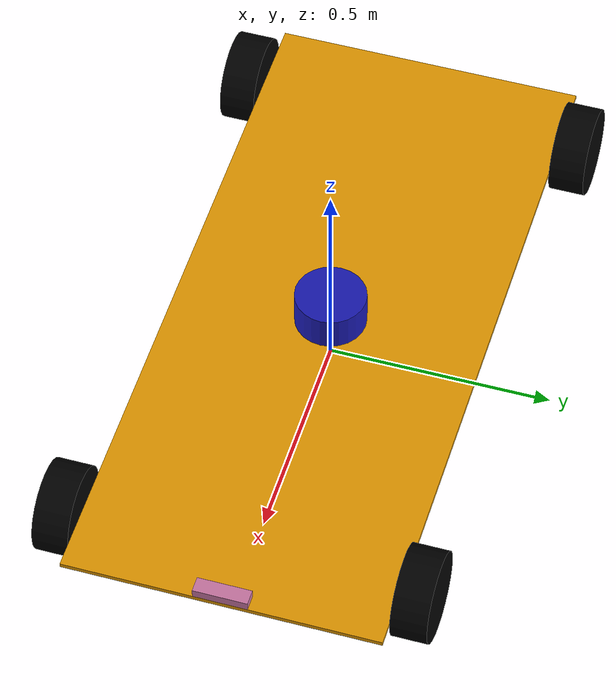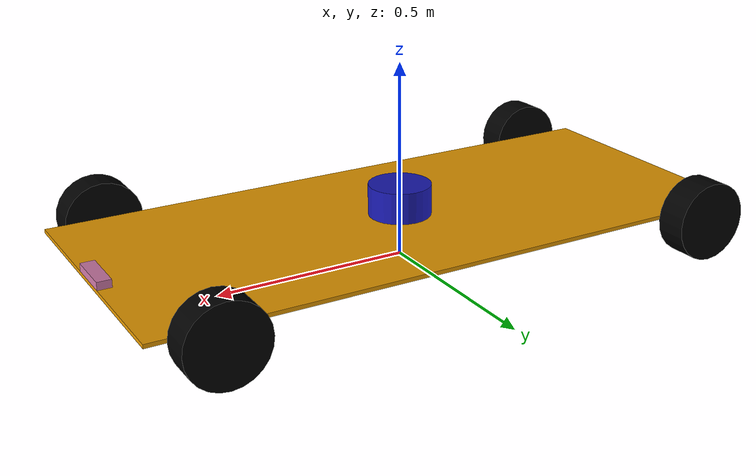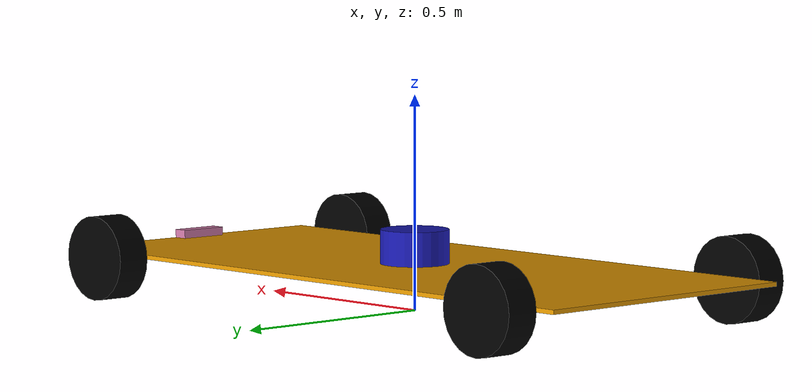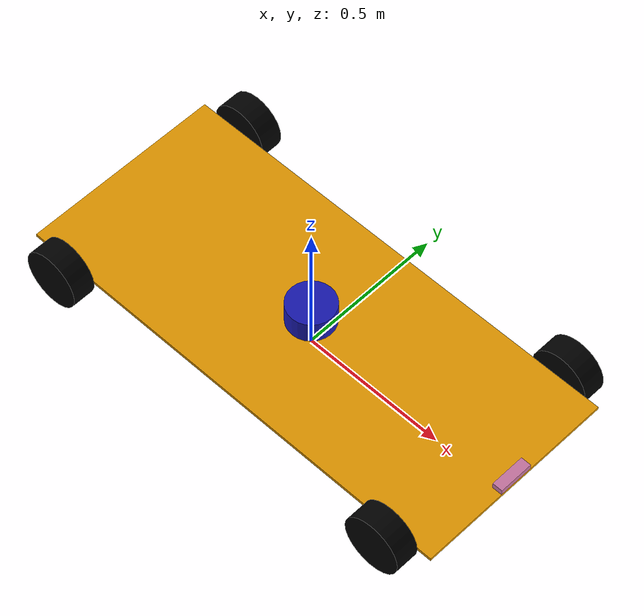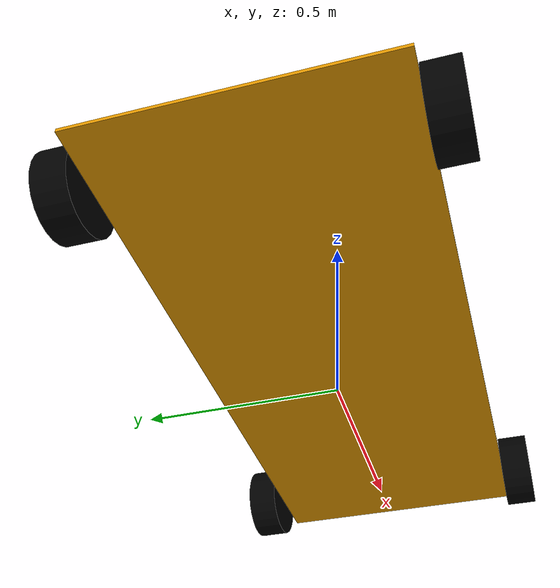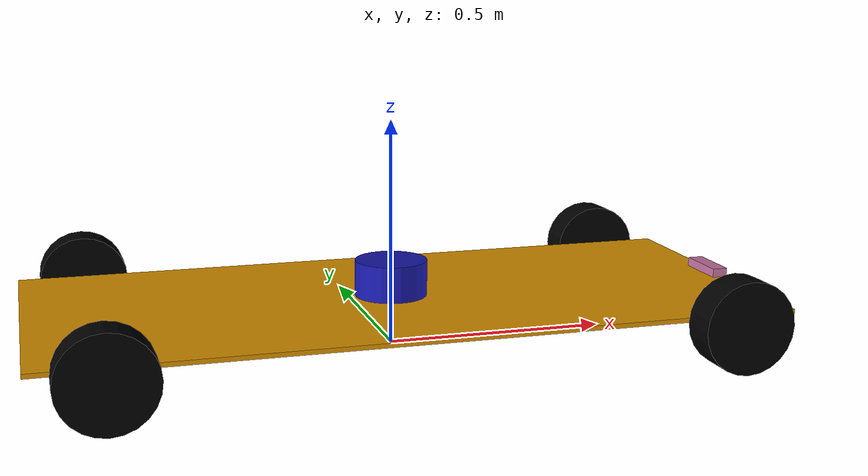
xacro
<!-- 主文件 -->
 <robot xmlns:xacro="http://www.ros.org/wiki/xacro" name="car">
   <!-- 惯性矩阵文件 -->
   <xacro:include filename="car_head.xacro"/>

   <xacro:include filename="car_base.urdf.xacro"/>
   <xacro:include filename="car_camera.urdf.xacro"/>
   <xacro:include filename="car_laser.urdf.xacro"/>
   <!-- 运动控制 -->
   <xacro:include filename="../gazebo/car_move.urdf.xacro"/>

 </robot>

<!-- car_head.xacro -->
<!-- 惯性参数计算宏定义文件，用于URDF中快速设置不同形状的惯性 -->
<robot xmlns:xacro="http://ros.org/wiki/xacro">

    <!-- 长方体惯性宏: 用于车身、底盘等 -->
    <!-- 参数: m=质量, w=宽, h=高, d=深 -->
    <xacro:macro name="box_inertia" params="m w h d">
        <inertial>
            <mass value="${m}" />
            <inertia ixx="${(m/12) * (h*h + d*d)}" ixy="0.0" ixz="0.0" iyy="${(m/12) * (w*w + d*d)}" iyz="0.0" izz="${(m/12) * (w*w + h*h)}" />
        </inertial>
    </xacro:macro>

    <!-- 圆柱体惯性宏: 用于车轮、滚筒等 -->
    <!-- 参数: m=质量, r=半径, h=高度 -->
    <xacro:macro name="cylinder_inertia" params="m r h">
        <inertial>
            <mass value="${m}" />
            <inertia ixx="${(m/12) * (3*r*r + h*h)}" ixy="0" ixz="0" iyy="${(m/12) * (3*r*r + h*h)}" iyz="0" izz="${(m/2) * (r*r)}" />
        </inertial>
    </xacro:macro>

    <!-- 球体惯性宏: 用于球形关节等 -->
    <!-- 参数: m=质量, r=半径 -->
    <xacro:macro name="sphere_inertia" params="m r">
        <inertial>
            <mass value="${m}" />
            <inertia ixx="${(2/5) * m * (r*r)}" ixy="0.0" ixz="0.0" iyy="${(2/5) * m * (r*r)}" iyz="0.0" izz="${(2/5) * m * (r*r)}" />
        </inertial>
    </xacro:macro>

</robot>

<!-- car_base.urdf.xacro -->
<!-- 底盘 -->
<robot xmlns:xacro="http://www.ros.org/wiki/xacro">
    <xacro:property name="PI" value="3.1415927"/>
    <!-- 底座 -->
    <xacro:property name="car_length" value="1.6"/>
    <xacro:property name="car_width" value="0.7"/>
    <xacro:property name="car_height" value="0.01"/>
    <xacro:property name="car_mass" value="2"/>
    <!-- 轮胎 -->
    <xacro:property name="wheel_radius" value="0.1"/>
    <xacro:property name="wheel_length" value="0.08"/>
    <xacro:property name="wheel_mass" value="1.5"/>
    <!-- 离地间距 -->
    <xacro:property name="distance" value="0.1"/>
    <!-- 轮胎关节偏移量 -->
    <xacro:property name="wheel_joint_x" value="0.65"/>
    <xacro:property name="wheel_joint_y" value="${car_width/2 + wheel_length/2}"/>
    <xacro:property name="wheel_joint_z" value="${-(car_height/2 + distance - wheel_radius)}"/>

    <!-- 1.抽取颜色 -->
    <material name="yellow">
        <color rgba="0.9 0.6 0.0 1.0"/>
    </material>
    <material name="black">
        <color rgba="0.0 0.0 0.0 1.0"/>
    </material>
    <!-- 2.设置base_footprint -->
    <link name="base_footprint">
        <visual>
            <geometry>
                <sphere radius="0.001"/>
            </geometry>
        </visual>
    </link>
    <!-- 3.设置base_link -->
    <link name="base_link">
        <visual>
            <geometry>
                <box size="${car_length} ${car_width} ${car_height}"/>
            </geometry>
            <material name="yellow"/>
        </visual>
        <!-- 碰撞信息 gazebo使用 -->
        <collision>
            <geometry>
                <box size="${car_length} ${car_width} ${car_height}"/>
            </geometry>
        </collision>
        <!-- 调用惯性矩阵 -->
        <xacro:box_inertia m="${car_mass}" w="${car_width}" h="${car_height}" d="${car_height}"/>
    </link>
    <gazebo reference="base_link">
        <material name="yellow"/>
    </gazebo>
    <!-- 4.joint关联俩者 -->
    <joint name="base_linkbase_footprint" type="fixed">
        <parent link="base_footprint"/>
        <child link="base_link"/>
        <!-- z偏移 = 车体高度/2 + 离地间距 -->
        <origin xyz="0.0 0.0 ${car_height/2 +distance}"/>
    </joint>
    <!-- 5.定义车轮宏 -->
    <xacro:macro name="wheel_func" params="link_name front_flag left_flag">
        <link name="${link_name}">
            <visual>
                <geometry>
                    <cylinder radius="${wheel_radius}" length="${wheel_length}"/>
                </geometry>
                <material name="black"/>
                <origin rpy="${PI/2} 0.0 0.0"/>
            </visual>
            <collision>
                <geometry>

                    <cylinder radius="${wheel_radius}" length="${wheel_length}"/>
                </geometry>
                <material name="black"/>
                <origin rpy="${PI/2} 0.0 0.0"/>
            </collision>
            <xacro:cylinder_inertia m="${wheel_mass}" r="${wheel_radius}" h="${wheel_length}"/>
        </link>
        <gazebo reference="${link_name}">
            <collision>
                <surface>
                    <friction>
                        <ode>
                            <mu>1.0</mu>
                            <mu2>1.0</mu2>
                            <slip1>0.035</slip1>
                            <slip2>0.0</slip2>
                            <fdir1>0 0 1</fdir1>
                        </ode>
                    </friction>
                </surface>
            </collision>
            <material name="black"/>
        </gazebo>
        <joint name="${link_name}base_link" type="continuous">
            <parent link="base_link"/>
            <child link="${link_name}"/>
            <origin xyz="${wheel_joint_x * front_flag} ${wheel_joint_y * left_flag} ${wheel_joint_z}"/>
            <axis xyz="0.0 1.0 0.0"/>
        </joint>
    </xacro:macro>
    <!-- 6.调用宏生成四个车轮 -->
    <xacro:wheel_func link_name="front_left" front_flag="1" left_flag="1"/>
    <xacro:wheel_func link_name="front_right" front_flag="1" left_flag="-1"/>
    <xacro:wheel_func link_name="back_left" front_flag="-1" left_flag="1"/>
    <xacro:wheel_func link_name="back_right" front_flag="-1" left_flag="-1"/>
</robot>

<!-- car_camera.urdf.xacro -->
<!-- 摄像头 -->
<robot xmlns:xacro="http://www.ros.org/wiki/xacro">
    <!-- 1.声明参数 -->
    <xacro:property name="camera_x" value="0.035"/>
    <xacro:property name="camera_y" value="0.12"/>
    <xacro:property name="camera_z" value="0.02"/>
    <xacro:property name="camera_mass" value="1.65"/>
    <!-- 关节偏移量 -->
    <xacro:property name="camera_joint_x" value="${car_length/2 - 0.0175}"/>
    <xacro:property name="camera_joint_y" value="0"/>
    <xacro:property name="camera_joint_z" value="${car_height/2 + camera_z/2}"/>
    <!-- 2.设置link joint -->
    <link name="camera">
        <visual>
            <geometry>
                <box size="${camera_x} ${camera_y} ${camera_z}"/>

            </geometry>
        </visual>
        <collision>
            <geometry>
                <box size="${camera_x} ${camera_y} ${camera_z}"/>
            </geometry>
        </collision>
        <!-- 调用惯性矩阵 -->
        <xacro:box_inertia m="${camera_mass}" w="${camera_x}" h="${camera_y}" d="${camera_z}"/>
    </link>
    <joint name="camera_base_link" type="fixed">
        <parent link="base_link"/>
        <child link="camera"/>
        <origin xyz="${camera_joint_x} ${camera_joint_y} ${camera_joint_z}"/>
    </joint>

</robot>

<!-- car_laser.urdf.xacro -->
<!-- 雷达 -->
<robot xmlns:xacro="http://www.ros.org/wiki/xacro">
    <!-- 1.声明参数 -->
    <xacro:property name="laser_radius" value="0.08"/>
    <xacro:property name="laser_length" value="0.08"/>
    <xacro:property name="laser_mass" value="1.76"/>
    <!-- 关节偏移量 -->
    <xacro:property name="laser_joint_x" value="0"/>
    <xacro:property name="laser_joint_y" value="0"/>
    <xacro:property name="laser_joint_z" value="${car_height/2 + laser_length/2}"/>
    <!-- 2.设置link joint -->
    <link name="laser">
        <visual>
            <geometry>
                <cylinder radius="${laser_radius}" length="${laser_length}"/>
            </geometry>
            <material name="blue">
                <color rgba="0.1 0.1 0.7 1.0"/>
            </material>
        </visual>
        <collision>
            <geometry>
                <cylinder radius="${laser_radius}" length="${laser_length}"/>
            </geometry>
        </collision>
        <xacro:cylinder_inertia m="${laser_mass}" r="${laser_radius}" h="${laser_length}"/>
    </link>
    <joint name="laser_base_link" type="fixed">
        <parent link="base_link"/>
        <child link="laser"/>
        <origin xyz="${laser_joint_x} ${laser_joint_y} ${laser_joint_z}"/>
    </joint>

</robot>
